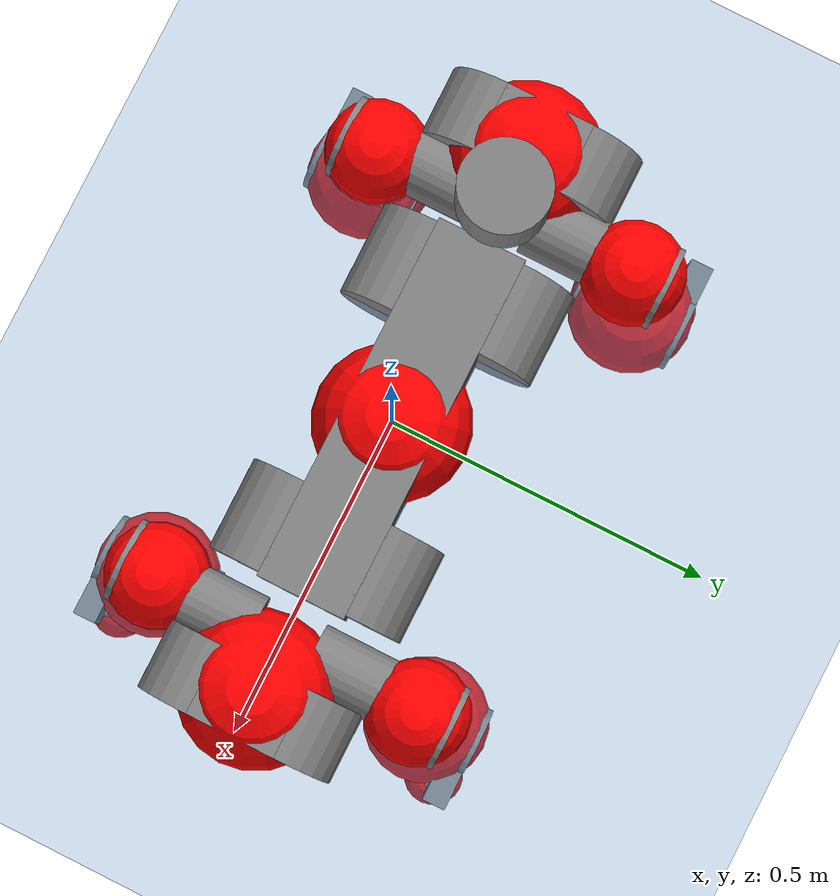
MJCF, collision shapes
<mujoco model="anymal_c">
  <compiler angle="radian" assetdir="assets" balanceinertia="true" inertiafromgeom="false"/>

  <option timestep="0.005" density="1.2" viscosity="2e-05"/>

  <size nkey="1"/>

  <visual>
    <quality shadowsize="8192"/>
    <map shadowclip="0.5"/>
  </visual>

  <default>
    <default class="/">
      <material specular="0" shininess="0.25"/>
      <geom contype="0" conaffinity="0" group="1" solref="-1000 -80"/>
      <site size="0.01 0.005 0.005" group="5"/>
      <general forcelimited="true" forcerange="-80 80" biastype="affine" gainprm="80" biasprm="0 -80 -2"/>
      <default class="anymal_c">
        <joint armature="0.01" damping="0.01" frictionloss="0.1"/>
        <default class="visual">
          <geom type="mesh" group="2"/>
          <default class="visual_zflip"/>
        </default>
        <default class="collision">
          <geom type="cylinder" group="3"/>
          <default class="foot">
            <geom size="0.03 0 0" type="sphere" condim="6" priority="1" friction="0.8 0.02 0.01" solimp="0.015 1 0.03"/>
          </default>
        </default>
      </default>
      <default class="reward_collision_sphere">
        <geom group="5" rgba="1 0 0 1"/>
      </default>
    </default>
  </default>

  <asset>
    <texture type="skybox" colorspace="auto" name="//unnamed_texture_0" builtin="gradient" rgb1="0.95 0.95 0.95" rgb2="0.95 0.95 0.95" width="100" height="600"/>
    <texture type="2d" colorspace="auto" name="texplane" builtin="checker" rgb1="0.345 0.575 0.748" rgb2="0.345 0.575 0.748" markrgb="1 1 1" width="512" height="512"/>
    <texture type="2d" colorspace="linear" name="base" file="base.png"/>
    <texture type="2d" colorspace="linear" name="top_shell" file="top_shell.png"/>
    <texture type="2d" colorspace="linear" name="bottom_shell" file="bottom_shell.png"/>
    <texture type="2d" colorspace="linear" name="remote" file="remote.png"/>
    <texture type="2d" colorspace="linear" name="hatch" file="hatch.png"/>
    <texture type="2d" colorspace="linear" name="handle" file="handle.png"/>
    <texture type="2d" colorspace="linear" name="face" file="face.png"/>
    <texture type="2d" colorspace="linear" name="battery" file="battery.png"/>
    <texture type="2d" colorspace="linear" name="lidar_cage" file="lidar_cage.png"/>
    <texture type="2d" colorspace="linear" name="depth_camera" file="depth_camera.png"/>
    <texture type="2d" colorspace="linear" name="wide_angle_camera" file="wide_angle_camera.png"/>
    <texture type="2d" colorspace="linear" name="lidar" file="lidar.png"/>
    <texture type="2d" colorspace="linear" name="drive" file="drive.png"/>
    <texture type="2d" colorspace="linear" name="hip_l" file="hip_l.png"/>
    <texture type="2d" colorspace="linear" name="shank_l" file="shank_l.png"/>
    <texture type="2d" colorspace="linear" name="foot" file="foot.png"/>
    <texture type="2d" colorspace="linear" name="thigh" file="thigh.png"/>
    <texture type="2d" colorspace="linear" name="shank_r" file="shank_r.png"/>
    <texture type="2d" colorspace="linear" name="hip_r" file="hip_r.png"/>
    <material name="MatPlane" class="/" texture="texplane" texuniform="true" texrepeat="2 2" specular="0.9" shininess="0.5"/>
    <material name="black_plastic" class="/" rgba="0.007 0.007 0.007 1"/>
    <material name="green" class="/" rgba="0.052 0.178 0.033 1"/>
    <material name="red" class="/" rgba="0.178 0.006 0.005 1"/>
    <material name="yellow" class="/" rgba="0.178 0.119 0.006 1"/>
    <material name="lwl" class="/" rgba="0.8 0.8 0.8 1"/>
    <material name="base" class="/" texture="base"/>
    <material name="top_shell" class="/" texture="top_shell"/>
    <material name="bottom_shell" class="/" texture="bottom_shell"/>
    <material name="hip_l" class="/" texture="hip_l"/>
    <material name="thigh" class="/" texture="thigh"/>
    <material name="shank_l" class="/" texture="shank_l"/>
    <material name="foot" class="/" texture="foot"/>
    <material name="hip_r" class="/" texture="hip_r"/>
    <material name="shank" class="/" texture="shank_r"/>
    <material name="hatch" class="/" texture="hatch"/>
    <material name="remote" class="/" texture="remote"/>
    <material name="handle" class="/" texture="handle"/>
    <material name="face" class="/" texture="face"/>
    <material name="depth_camera" class="/" texture="depth_camera"/>
    <material name="wide_angle_camera" class="/" texture="wide_angle_camera"/>
    <material name="battery" class="/" texture="battery"/>
    <material name="lidar_cage" class="/" texture="lidar_cage"/>
    <material name="lidar" class="/" texture="lidar"/>
    <material name="drive" class="/" texture="drive"/>
    <mesh name="base_0" class="/" file="base_0.obj"/>
    <mesh name="base_1" class="/" file="base_1.obj"/>
    <mesh name="base_2" class="/" file="base_2.obj"/>
    <mesh name="base_3" class="/" file="base_3.obj"/>
    <mesh name="base_4" class="/" file="base_4.obj"/>
    <mesh name="base_5" class="/" file="base_5.obj"/>
    <mesh name="top_shell" class="/" file="top_shell.obj"/>
    <mesh name="bottom_shell" class="/" file="bottom_shell.obj"/>
    <mesh name="remote" class="/" file="remote.obj"/>
    <mesh name="handle" class="/" file="handle.obj"/>
    <mesh name="face" class="/" file="face.obj"/>
    <mesh name="wide_angle_camera" class="/" file="wide_angle_camera.obj"/>
    <mesh name="depth_camera" class="/" file="depth_camera.obj"/>
    <mesh name="battery" class="/" file="battery.obj"/>
    <mesh name="lidar_cage" class="/" file="lidar_cage.obj"/>
    <mesh name="lidar" class="/" file="lidar.obj"/>
    <mesh name="drive" class="/" file="drive.obj"/>
    <mesh name="hip_l" class="/" file="hip_l.obj"/>
    <mesh name="thigh" class="/" file="thigh.obj"/>
    <mesh name="shank_l" class="/" file="shank_l.obj"/>
    <mesh name="foot" class="/" file="foot.obj"/>
    <mesh name="hip_r" class="/" file="hip_r.obj"/>
    <mesh name="hatch" class="/" file="hatch.obj"/>
    <mesh name="shank_r" class="/" file="shank_r.obj"/>
  </asset>

  <worldbody>
    <geom name="floor" class="/" size="100 100 0.125" type="plane" group="0" material="MatPlane"/>
    <light name="toplight_shadow" class="/" pos="0 0 5" dir="0.0990148 0.0990148 -0.990148" type="directional" ambient="0.04 0.04 0.04" diffuse="0.55 0.55 0.55" specular="0.12 0.12 0.12"/>
    <light name="toplight_fill" class="/" pos="0 0 5" dir="0.0990148 0.0990148 -0.990148" type="directional" castshadow="false" ambient="0.04 0.04 0.04" diffuse="0.3 0.3 0.3" specular="0.08 0.08 0.08"/>
    <body name="trunk" childclass="anymal_c" pos="0.000810403 0.000434081 -0.0020044" quat="0.999999 0.00114363 0.00111478 -0.000124107">
      <inertial pos="0.0140217 0.00854095 0.0560895" quat="0.498605 0.500537 0.500407 0.500448" mass="16.241" diaginertia="0.526486 0.457794 0.291448"/>
      <joint name="//unnamed_joint_0" type="free" armature="0" damping="0" frictionloss="0"/>
      <geom name="//unnamed_geom_1" class="visual" material="green" mesh="base_0"/>
      <geom name="//unnamed_geom_2" class="visual" material="yellow" mesh="base_1"/>
      <geom name="//unnamed_geom_3" class="visual" material="red" mesh="base_2"/>
      <geom name="//unnamed_geom_4" class="visual" material="black_plastic" mesh="base_3"/>
      <geom name="//unnamed_geom_5" class="visual" material="lwl" mesh="base_4"/>
      <geom name="//unnamed_geom_6" class="visual" material="base" mesh="base_5"/>
      <geom name="trunk_1" class="collision" size="0.285847 0.0689975 0.088711" type="box"/>
      <geom name="trunk_2" class="collision" size="0.088711 0.0714616" pos="0.208306 0.0659258 0" quat="0.707107 0 0.707107 0"/>
      <geom name="trunk_3" class="collision" size="0.088711 0.0714616" pos="-0.208306 0.0659258 0" quat="0.707107 0 0.707107 0"/>
      <geom name="trunk_4" class="collision" size="0.088711 0.0714616" pos="0.208306 -0.0659258 0" quat="0.707107 0 0.707107 0"/>
      <geom name="trunk_5" class="collision" size="0.088711 0.0714616" pos="-0.208306 -0.0659258 0" quat="0.707107 0 0.707107 0"/>
      <geom name="//unnamed_geom_12" class="visual" material="top_shell" mesh="top_shell"/>
      <geom name="//unnamed_geom_13" class="visual" material="bottom_shell" mesh="bottom_shell"/>
      <geom name="//unnamed_geom_14" class="visual" material="remote" mesh="remote"/>
      <geom name="//unnamed_geom_15" class="visual" material="handle" mesh="handle"/>
      <geom name="//unnamed_geom_16" class="visual" pos="0.396979 0 0" quat="1 0 0 0" material="face" mesh="face"/>
      <geom name="trunk_6" class="collision" size="0.0542123 0.0689975 0.088711" pos="0.449655 0 0" type="box"/>
      <geom name="//unnamed_geom_18" class="collision" size="0.088711 0.0542123" pos="0.449655 0.0659258 0" quat="0.707107 0 0.707107 0"/>
      <geom name="//unnamed_geom_19" class="collision" size="0.088711 0.0542123" pos="0.449655 -0.0659258 0" quat="0.707107 0 0.707107 0"/>
      <geom name="//unnamed_geom_20" class="visual" pos="0.44214 0 -0.0316374" quat="0.965926 0 0.258819 0" material="depth_camera" mesh="depth_camera"/>
      <geom name="//unnamed_geom_21" class="visual" pos="0.491316 0 0.0158309" material="wide_angle_camera" mesh="wide_angle_camera"/>
      <geom name="//unnamed_geom_22" class="visual_zflip" pos="-0.396979 0 0" quat="0 0 0 1" material="face" mesh="face"/>
      <geom name="trunk_7" class="collision" size="0.0542123 0.0689975 0.088711" pos="-0.449655 0 0" quat="0 0 0 1" type="box"/>
      <geom name="//unnamed_geom_24" class="collision" size="0.088711 0.0542123" pos="-0.449655 -0.0659258 0" quat="0 -0.707107 0 0.707107"/>
      <geom name="//unnamed_geom_25" class="collision" size="0.088711 0.0542123" pos="-0.449655 0.0659258 0" quat="0 -0.707107 0 0.707107"/>
      <geom name="//unnamed_geom_26" class="visual" pos="-0.44214 0 -0.0316374" quat="0 -0.258819 0 0.965926" material="depth_camera" mesh="depth_camera"/>
      <geom name="//unnamed_geom_27" class="visual_zflip" pos="-0.491316 0 0.0158309" quat="0 0 0 1" material="wide_angle_camera" mesh="wide_angle_camera"/>
      <geom name="//unnamed_geom_28" class="visual" material="battery" mesh="battery"/>
      <geom name="//unnamed_geom_29" class="visual" pos="0 0.0718049 0.0299622" quat="0.683013 -0.183013 0.183013 0.683013" material="depth_camera" mesh="depth_camera"/>
      <geom name="//unnamed_geom_30" class="visual" pos="0 -0.0718049 0.0299622" quat="0.683013 0.183013 0.183013 -0.683013" material="depth_camera" mesh="depth_camera"/>
      <geom name="//unnamed_geom_31" class="visual" pos="-0.348614 0 0.0777266" quat="1 0 0 0" material="lidar_cage" mesh="lidar_cage"/>
      <geom name="trunk_8" class="collision" size="0.0689975 0.0591407" pos="-0.348614 0 0.141177"/>
      <geom name="//unnamed_geom_33" class="visual" pos="-0.348614 -6.25958e-06 0.150377" quat="0.707107 0 0 -0.707107" material="lidar" mesh="lidar"/>
      <geom name="//unnamed_geom_34" class="visual" pos="0.287223 0.0979881 -1.99597e-09" quat="0.258819 0.965926 0 0" material="drive" mesh="drive"/>
      <geom name="//unnamed_geom_35" class="visual" pos="0.287223 -0.0979881 1.99597e-09" quat="0.258819 -0.965926 0 0" material="drive" mesh="drive"/>
      <geom name="//unnamed_geom_36" class="visual" pos="-0.287223 0.0979881 1.99597e-09" quat="0 0 0.965926 -0.258819" material="drive" mesh="drive"/>
      <geom name="//unnamed_geom_37" class="visual" pos="-0.287223 -0.0979881 -1.99597e-09" quat="0 0 -0.965926 -0.258819" material="drive" mesh="drive"/>
      <geom name="//unnamed_geom_38" class="visual" pos="0.111097 0 0.0771979" quat="1 0 0 0" material="hatch" mesh="hatch"/>
      <geom name="//unnamed_geom_39" class="reward_collision_sphere" size="0.118281"/>
      <geom name="//unnamed_geom_40" class="reward_collision_sphere" size="0.118281" pos="0.430979 0 0"/>
      <geom name="//unnamed_geom_41" class="reward_collision_sphere" size="0.118281" pos="-0.430979 0 0"/>
      <site name="imu" pos="0.189821 0.0106192 0.0971262" size="0.00985678"/>
      <camera name="track" pos="0 -1.8836 0" quat="0.707107 0.707107 0 0" mode="trackcom"/>
      <camera name="ego_camera" pos="0.430979 0 -0.0423002" quat="-0.5 -0.5 0.5 0.5"/>
      <body name="LF_HIP" pos="0.294294 0.105465 0.0036179" quat="0.258679 0.965963 -0.000423294 -0.000273992">
        <inertial pos="0.054916 -0.00745277 -0.0101867" quat="-0.127774 0.71027 -0.134375 0.679068" mass="2.89847" diaginertia="0.00551193 0.00457362 0.00499329"/>
        <joint name="LF_HAA" pos="0 0 0" axis="0.999927 0.00622253 -0.0103986" stiffness="0.0283042" range="-0.70734 0.432266" armature="0.0107454" damping="0" frictionloss="0.127049"/>
        <geom name="//unnamed_geom_42" class="visual" pos="0 -0.000117414 1.92851e-05" quat="0.258819 -0.965926 0 0" material="hip_l" mesh="hip_l"/>
        <geom name="//unnamed_geom_43" class="visual" pos="0.0573681 -0.0693449 -0.0408922" quat="0.183013 -0.683013 0.683013 0.183013" material="drive" mesh="drive"/>
        <geom name="//unnamed_geom_44" class="collision" size="0.0492839 0.0689975" pos="0.0573681 -0.0112637 -0.00730207" quat="-0.353553 -0.612372 0.612372 -0.353553"/>
        <body name="LF_THIGH" pos="0.0618981 -0.0787775 -0.0477828" quat="0.180734 -0.681958 0.685436 0.180127">
          <inertial pos="0.0315993 0.000478009 -0.264145" quat="0.98996 -0.00676712 -0.0751389 0.119527" mass="3.1119" diaginertia="0.0239973 0.0247298 0.00533952"/>
          <joint name="LF_HFE" pos="0 0 0" axis="0.999989 0.000705888 0.00456318" stiffness="0.0102855" range="-3.31323 3.02654" armature="0.0103095" damping="0" frictionloss="0.121161"/>
          <geom name="//unnamed_geom_45" class="visual" pos="0.000317 4.99519e-07 0" quat="0.707107 0 0 -0.707107" material="thigh" mesh="thigh"/>
          <geom name="//unnamed_geom_46" class="collision" size="0.0640691 0.0394271" pos="0.0383092 0 0" quat="0.5 0.5 -0.5 -0.5"/>
          <geom name="//unnamed_geom_47" class="collision" size="0.0369629 0.0295703 0.13929" pos="0.0287319 0 -0.14944" quat="0.707107 0 0 -0.707107" type="box"/>
          <geom name="//unnamed_geom_48" class="visual" pos="0.0960604 0 -0.301389" quat="1 0 0 0" material="drive" mesh="drive"/>
          <geom name="//unnamed_geom_49" class="collision" size="0.0492839 0.0689975" pos="0.0290192 0 -0.301389" quat="0.707107 0 0.707107 0"/>
          <geom name="//unnamed_geom_50" class="reward_collision_sphere" size="0.0788542" pos="0.0239433 0 0"/>
          <body name="LF_SHANK" pos="0.0953186 -0.00901137 -0.304551" quat="1 -0.000195096 5.95958e-05 -1.37207e-05">
            <inertial pos="0.00411673 -0.0577534 -0.0817453" quat="0.992469 -0.119909 -0.0081443 -0.023692" mass="0.569405" diaginertia="0.00897016 0.00693052 0.00147204"/>
            <joint name="LF_KFE" pos="0 0 0" axis="0.99996 -0.0089192 -7.1498e-05" stiffness="0.0415441" range="-3.2521 3.16723" armature="0.00903592" damping="0.0180648" frictionloss="0.106379"/>
            <geom name="//unnamed_geom_51" class="visual" pos="0.000103367 0.000551158 0" quat="0.707107 0 0 -0.707107" material="shank_l" mesh="shank_l"/>
            <geom name="LF_kfe_act" class="collision" size="0.0591407 0.0197136" pos="0.0191546 0 0" quat="0.5 0.5 -0.5 -0.5"/>
            <geom name="//unnamed_geom_53" class="collision" size="0.0566755 0.0332666 0.0187279" pos="0.0191546 -0.0541524 0" quat="0.5 0.5 -0.5 -0.5" type="box"/>
            <geom name="//unnamed_geom_54" class="visual" pos="0.0124984 -0.0826535 -0.357405" quat="0.382683 0 0 -0.92388" material="foot" mesh="foot"/>
            <geom name="LF_calf" class="collision" size="0.0172494 0.139229" pos="0.0124984 -0.0828311 -0.178703" quat="0.707107 0 0 -0.707107"/>
            <geom name="LF_foot" class="foot" size="0.0325474" pos="0.0124984 -0.0828311 -0.333611" quat="0.707107 0 0 -0.707107"/>
            <geom name="//unnamed_geom_57" class="reward_collision_sphere" size="0.0985678" pos="-0.0478865 0 0"/>
            <geom name="//unnamed_geom_58" class="reward_collision_sphere" size="0.0492839" pos="0.0124984 -0.0828311 -0.333611"/>
            <site name="LF_foot" class="foot" pos="0.0124984 -0.0828311 -0.333611" quat="0.707107 0 0 -0.707107" size="0.00985678"/>
          </body>
        </body>
      </body>
      <body name="RF_HIP" pos="0.29726 -0.097463 0.000163676" quat="0.258837 -0.965921 3.21547e-05 -2.14193e-05">
        <inertial pos="0.0596935 0.0262859 -0.00314646" quat="0.188045 0.669822 0.120945 0.708061" mass="2.6264" diaginertia="0.00518836 0.00322914 0.00475117"/>
        <joint name="RF_HAA" pos="0 0 0" axis="0.999294 0.0328921 0.0181391" range="-0.481966 0.713895" armature="0.00986504" damping="0.039125" frictionloss="0.0873688"/>
        <geom name="//unnamed_geom_59" class="visual" pos="0 0.000117413 1.9285e-05" quat="0.258819 0.965926 0 0" material="hip_r" mesh="hip_r"/>
        <geom name="//unnamed_geom_60" class="visual" pos="0.0573681 0.0693449 -0.0408922" quat="0.183013 0.683013 0.683013 -0.183013" material="drive" mesh="drive"/>
        <geom name="//unnamed_geom_61" class="collision" size="0.0492839 0.0689975" pos="0.0573681 0.0112637 -0.00730207" quat="-0.353553 0.612372 0.612372 0.353553"/>
        <body name="RF_THIGH" pos="0.0531803 0.0723415 -0.0361945" quat="0.183047 0.681764 0.683206 -0.186873">
          <inertial pos="0.0197356 0.00143728 -0.255238" quat="0.994633 -0.016291 -0.0766049 0.0676188" mass="2.66842" diaginertia="0.0259607 0.024314 0.00485128"/>
          <joint name="RF_HFE" pos="0 0 0" axis="0.999937 -0.00502031 0.0100569" stiffness="0.0197839" range="-3.18034 3.13997" armature="0.0123187" damping="0.00911254" frictionloss="0.0844308"/>
          <geom name="//unnamed_geom_62" class="visual" pos="0.000317 4.99519e-07 0" quat="0.707107 0 0 -0.707107" material="thigh" mesh="thigh"/>
          <geom name="//unnamed_geom_63" class="collision" size="0.0640691 0.0394271" pos="0.0383092 0 0" quat="0.5 0.5 0.5 0.5"/>
          <geom name="//unnamed_geom_64" class="collision" size="0.0369629 0.0295703 0.13929" pos="0.0287319 0 -0.14944" quat="0.707107 0 0 0.707107" type="box"/>
          <geom name="//unnamed_geom_65" class="visual" pos="0.0960604 0 -0.301389" quat="1 0 0 0" material="drive" mesh="drive"/>
          <geom name="//unnamed_geom_66" class="collision" size="0.0492839 0.0689975" pos="0.0290192 0 -0.301389" quat="0.707107 0 0.707107 0"/>
          <geom name="//unnamed_geom_67" class="reward_collision_sphere" size="0.0788542" pos="0.0239433 0 0"/>
          <body name="RF_SHANK" pos="0.100761 0.00128957 -0.300838" quat="0.999997 -0.00179033 0.000854661 -0.00117233">
            <inertial pos="0.012312 0.0579884 -0.085502" quat="0.991676 0.113374 0.0515776 0.0326345" mass="0.481614" diaginertia="0.00718674 0.00648116 0.00136248"/>
            <joint name="RF_KFE" pos="0 0 0" axis="0.999988 0.0016917 0.00466625" stiffness="0.0477615" range="-2.94025 3.23903" armature="0.00580867" damping="0" frictionloss="0.0825462"/>
            <geom name="//unnamed_geom_68" class="visual" pos="0.000103366 -0.000551157 0" quat="0.707107 0 0 0.707107" material="shank" mesh="shank_r"/>
            <geom name="RF_kfe_act" class="collision" size="0.0591407 0.0197136" pos="0.0191546 0 0" quat="0.5 0.5 0.5 0.5"/>
            <geom name="//unnamed_geom_70" class="collision" size="0.0566755 0.0332666 0.0187279" pos="0.0191546 0.0541524 0" quat="0.5 0.5 0.5 0.5" type="box"/>
            <geom name="//unnamed_geom_71" class="visual" pos="0.0124984 0.0826535 -0.357405" quat="0.382683 0 0 0.92388" material="foot" mesh="foot"/>
            <geom name="RF_calf" class="collision" size="0.0172494 0.139229" pos="0.0124984 0.0828311 -0.178703" quat="0.707107 0 0 0.707107"/>
            <geom name="RF_foot" class="foot" size="0.0372353" pos="0.0124984 0.0828311 -0.333611" quat="0.707107 0 0 0.707107"/>
            <geom name="//unnamed_geom_74" class="reward_collision_sphere" size="0.0985678" pos="-0.0478865 0 0"/>
            <geom name="//unnamed_geom_75" class="reward_collision_sphere" size="0.0492839" pos="0.0124984 0.0828311 -0.333611"/>
            <site name="RF_foot" class="foot" pos="0.0124984 0.0828311 -0.333611" quat="0.707107 0 0 0.707107" size="0.00985678"/>
          </body>
        </body>
      </body>
      <body name="LH_HIP" pos="-0.296024 0.104189 0.00833714" quat="0.000500925 -1.29585e-05 0.965797 -0.2593">
        <inertial pos="0.0548649 0.00837817 0.00163861" quat="0.137642 0.704861 0.131062 0.68341" mass="2.33856" diaginertia="0.00351221 0.0031984 0.00400638"/>
        <joint name="LH_HAA" pos="0 0 0" axis="0.9993 -0.0340062 0.0156059" stiffness="0.014275" range="-0.528734 0.679466" armature="0.00883404" damping="0.0520571" frictionloss="0.100538"/>
        <geom name="//unnamed_geom_76" class="visual" pos="0 0.000117413 1.9285e-05" quat="-0.258819 -0.965926 0 0" material="hip_r" mesh="hip_r"/>
        <geom name="//unnamed_geom_77" class="visual" pos="0.0573681 0.0693449 -0.0408922" quat="0.183013 0.683013 0.683013 -0.183013" material="drive" mesh="drive"/>
        <geom name="//unnamed_geom_78" class="collision" size="0.0492839 0.0689975" pos="0.0573681 0.0112637 -0.00730207" quat="-0.353553 0.612372 0.612372 0.353553"/>
        <body name="LH_THIGH" pos="0.0550399 0.071463 -0.0475798" quat="0.182538 0.683165 0.683264 -0.181978">
          <inertial pos="0.0411215 -0.00185424 -0.249389" quat="0.992679 -0.012275 -0.0816465 0.0881533" mass="3.27703" diaginertia="0.029907 0.0220255 0.00579344"/>
          <joint name="LH_HFE" pos="0 0 0" axis="0.999992 0.00369693 -0.00119937" range="-3.06162 3.25337" armature="0.00980725" damping="0.0404523" frictionloss="0.0984522"/>
          <geom name="//unnamed_geom_79" class="visual" pos="0.000317 4.99519e-07 0" quat="0.707107 0 0 -0.707107" material="thigh" mesh="thigh"/>
          <geom name="//unnamed_geom_80" class="collision" size="0.0640691 0.0394271" pos="0.0383092 0 0" quat="0.5 0.5 -0.5 -0.5"/>
          <geom name="//unnamed_geom_81" class="collision" size="0.0369629 0.0295703 0.13929" pos="0.0287319 0 -0.14944" quat="0.707107 0 0 -0.707107" type="box"/>
          <geom name="//unnamed_geom_82" class="visual" pos="0.0960604 0 -0.301389" quat="1 0 0 0" material="drive" mesh="drive"/>
          <geom name="//unnamed_geom_83" class="collision" size="0.0492839 0.0689975" pos="0.0290192 0 -0.301389" quat="0.707107 0 0.707107 0"/>
          <geom name="//unnamed_geom_84" class="reward_collision_sphere" size="0.0788542" pos="0.0239433 0 0"/>
          <body name="LH_SHANK" pos="0.0988574 -0.00240619 -0.299874" quat="1 7.09049e-05 -5.87694e-05 -6.98895e-05">
            <inertial pos="0.00128506 0.0489157 -0.0835744" quat="0.990815 0.128364 0.0181962 0.0384393" mass="0.481628" diaginertia="0.00749728 0.00521827 0.00123937"/>
            <joint name="LH_KFE" pos="0 0 0" axis="0.999967 0.00067513 0.00805391" range="-3.3081 3.26127" armature="0.00516202" damping="0" frictionloss="0.137431"/>
            <geom name="//unnamed_geom_85" class="visual" pos="0.000103366 -0.000551157 0" quat="-0.707107 0 0 -0.707107" material="shank" mesh="shank_r"/>
            <geom name="LH_kfe_act" class="collision" size="0.0591407 0.0197136" pos="0.0191546 0 0" quat="0.5 0.5 -0.5 -0.5"/>
            <geom name="//unnamed_geom_87" class="collision" size="0.0566755 0.0332666 0.0187279" pos="0.0191546 0.0541524 0" quat="0.5 0.5 -0.5 -0.5" type="box"/>
            <geom name="//unnamed_geom_88" class="visual" pos="0.0124984 0.0826535 -0.357405" quat="-0.382683 0 0 -0.92388" material="foot" mesh="foot"/>
            <geom name="LH_calf" class="collision" size="0.0172494 0.139229" pos="0.0124984 0.0828311 -0.178703" quat="0.707107 0 0 -0.707107"/>
            <geom name="LH_foot" class="foot" size="0.0269472" pos="0.0124984 0.0828311 -0.333611" quat="0.707107 0 0 -0.707107"/>
            <geom name="//unnamed_geom_91" class="reward_collision_sphere" size="0.0985678" pos="-0.0478865 0 0"/>
            <geom name="//unnamed_geom_92" class="reward_collision_sphere" size="0.0492839" pos="0.0124984 0.0828311 -0.333611"/>
            <site name="LH_foot" class="foot" pos="0.0124984 0.0828311 -0.333611" quat="0.707107 0 0 -0.707107" size="0.00985678"/>
          </body>
        </body>
      </body>
      <body name="RH_HIP" pos="-0.298871 -0.0967213 -0.00273481" quat="-0.000240778 -0.00035191 -0.965866 -0.259042">
        <inertial pos="0.0591663 -0.0186862 0.00151332" quat="-0.144202 0.707635 -0.19094 0.664831" mass="2.73874" diaginertia="0.00540306 0.00424 0.00496793"/>
        <joint name="RH_HAA" pos="0 0 0" axis="0.998884 0.0164061 0.0442885" stiffness="0.00607026" range="-0.540679 0.406745" armature="0.0112297" damping="0.0294516" frictionloss="0.100433"/>
        <geom name="//unnamed_geom_93" class="visual" pos="0 -0.000117414 1.92851e-05" quat="-0.258819 0.965926 0 0" material="hip_l" mesh="hip_l"/>
        <geom name="//unnamed_geom_94" class="visual" pos="0.0573681 -0.0693449 -0.0408922" quat="-0.183013 0.683013 -0.683013 -0.183013" material="drive" mesh="drive"/>
        <geom name="//unnamed_geom_95" class="collision" size="0.0492839 0.0689975" pos="0.0573681 -0.0112637 -0.00730207" quat="0.353553 0.612372 -0.612372 0.353553"/>
        <body name="RH_THIGH" pos="0.046841 -0.0705355 -0.0354555" quat="-0.180229 0.685389 -0.681556 -0.182321">
          <inertial pos="0.0316071 -0.00477502 -0.260344" quat="0.993257 -0.00361379 -0.0803617 0.0834819" mass="3.40437" diaginertia="0.0282478 0.0231907 0.00583439"/>
          <joint name="RH_HFE" pos="0 0 0" axis="0.999995 0.00274935 -0.00180415" range="-3.23832 3.17065" armature="0.00972476" damping="0" frictionloss="0.0937975"/>
          <geom name="//unnamed_geom_96" class="visual" pos="0.000317 4.99519e-07 0" quat="0.707107 0 0 -0.707107" material="thigh" mesh="thigh"/>
          <geom name="//unnamed_geom_97" class="collision" size="0.0640691 0.0394271" pos="0.0383092 0 0" quat="0.5 0.5 0.5 0.5"/>
          <geom name="//unnamed_geom_98" class="collision" size="0.0369629 0.0295703 0.13929" pos="0.0287319 0 -0.14944" quat="0.707107 0 0 0.707107" type="box"/>
          <geom name="//unnamed_geom_99" class="visual" pos="0.0960604 0 -0.301389" quat="1 0 0 0" material="drive" mesh="drive"/>
          <geom name="//unnamed_geom_100" class="collision" size="0.0492839 0.0689975" pos="0.0290192 0 -0.301389" quat="0.707107 0 0.707107 0"/>
          <geom name="//unnamed_geom_101" class="reward_collision_sphere" size="0.0788542" pos="0.0239433 0 0"/>
          <body name="RH_SHANK" pos="0.0957217 -0.00752364 -0.298232" quat="0.999988 0.00285052 -0.00212098 -0.00328268">
            <inertial pos="-0.00243264 -0.0544971 -0.0863662" quat="0.991414 -0.12246 0.0329911 -0.031845" mass="0.540813" diaginertia="0.0083835 0.00681695 0.001556"/>
            <joint name="RH_KFE" pos="0 0 0" axis="0.999985 -0.00139616 0.00523086" range="-3.10054 2.95595" armature="0.00989784" damping="0" frictionloss="0.0829262"/>
            <geom name="//unnamed_geom_102" class="visual" pos="0.000103367 0.000551158 0" quat="0.707107 0 0 -0.707107" material="shank_l" mesh="shank_l"/>
            <geom name="RH_kfe_act" class="collision" size="0.0591407 0.0197136" pos="0.0191546 0 0" quat="0.5 0.5 0.5 0.5"/>
            <geom name="//unnamed_geom_104" class="collision" size="0.0566755 0.0332666 0.0187279" pos="0.0191546 -0.0541524 0" quat="0.5 0.5 0.5 0.5" type="box"/>
            <geom name="//unnamed_geom_105" class="visual" pos="0.0124984 -0.0826535 -0.357405" quat="0.382683 0 0 -0.92388" material="foot" mesh="foot"/>
            <geom name="RH_calf" class="collision" size="0.0172494 0.139229" pos="0.0124984 -0.0828311 -0.178703" quat="0.707107 0 0 0.707107"/>
            <geom name="RH_foot" class="foot" size="0.0359674" pos="0.0124984 -0.0828311 -0.333611" quat="0.707107 0 0 0.707107"/>
            <geom name="//unnamed_geom_108" class="reward_collision_sphere" size="0.0985678" pos="-0.0478865 0 0"/>
            <geom name="//unnamed_geom_109" class="reward_collision_sphere" size="0.0492839" pos="0.0124984 -0.0828311 -0.333611"/>
            <site name="RH_foot" class="foot" pos="0.0124984 -0.0828311 -0.333611" quat="0.707107 0 0 0.707107" size="0.00985678"/>
          </body>
        </body>
      </body>
    </body>
  </worldbody>

  <contact>
    <pair class="/" geom1="floor" geom2="LF_foot" name="//unnamed_contact_0"/>
    <pair class="/" geom1="floor" geom2="RF_foot" name="//unnamed_contact_1"/>
    <pair class="/" geom1="floor" geom2="LH_foot" name="//unnamed_contact_2"/>
    <pair class="/" geom1="floor" geom2="RH_foot" name="//unnamed_contact_3"/>
  </contact>

  <actuator>
    <general name="LF_HAA" class="/" joint="LF_HAA" forcerange="-100.144 100.144" gainprm="87.8708" biasprm="0 -87.8708 -2.18082"/>
    <general name="LF_HFE" class="/" joint="LF_HFE" forcerange="-109.154 109.154" gainprm="87.8708" biasprm="0 -87.8708 -2.18082"/>
    <general name="LF_KFE" class="/" joint="LF_KFE" forcerange="-84.4502 84.4502" gainprm="87.8708" biasprm="0 -87.8708 -2.18082"/>
    <general name="RF_HAA" class="/" joint="RF_HAA" forcerange="-85.9775 85.9775" gainprm="87.8708" biasprm="0 -87.8708 -2.18082"/>
    <general name="RF_HFE" class="/" joint="RF_HFE" forcerange="-60.4375 60.4375" gainprm="87.8708" biasprm="0 -87.8708 -2.18082"/>
    <general name="RF_KFE" class="/" joint="RF_KFE" forcerange="-78.8832 78.8832" gainprm="87.8708" biasprm="0 -87.8708 -2.18082"/>
    <general name="LH_HAA" class="/" joint="LH_HAA" forcerange="-78.9275 78.9275" gainprm="87.8708" biasprm="0 -87.8708 -2.18082"/>
    <general name="LH_HFE" class="/" joint="LH_HFE" forcerange="-98.5347 98.5347" gainprm="87.8708" biasprm="0 -87.8708 -2.18082"/>
    <general name="LH_KFE" class="/" joint="LH_KFE" forcerange="-72.6928 72.6928" gainprm="87.8708" biasprm="0 -87.8708 -2.18082"/>
    <general name="RH_HAA" class="/" joint="RH_HAA" forcerange="-77.0548 77.0548" gainprm="87.8708" biasprm="0 -87.8708 -2.18082"/>
    <general name="RH_HFE" class="/" joint="RH_HFE" forcerange="-53.9703 53.9703" gainprm="87.8708" biasprm="0 -87.8708 -2.18082"/>
    <general name="RH_KFE" class="/" joint="RH_KFE" forcerange="-78.2973 78.2973" gainprm="87.8708" biasprm="0 -87.8708 -2.18082"/>
  </actuator>

  <sensor>
    <gyro site="imu" name="imu_angular_velocity"/>
    <velocimeter site="imu" name="imu_linear_velocity"/>
    <framelinvel objtype="site" objname="LF_foot" name="LF_foot_global_linear_velocity"/>
    <framelinvel objtype="site" objname="RF_foot" name="RF_foot_global_linear_velocity"/>
    <framelinvel objtype="site" objname="LH_foot" name="LH_foot_global_linear_velocity"/>
    <framelinvel objtype="site" objname="RH_foot" name="RH_foot_global_linear_velocity"/>
  </sensor>

  <keyframe>
    <key name="home" qpos="0 0 0.55 1 0 0 0 0 0.4 -0.8 0 -0.4 0.8 0 -0.4 0.8 0 0.4 -0.8"/>
  </keyframe>
</mujoco>
